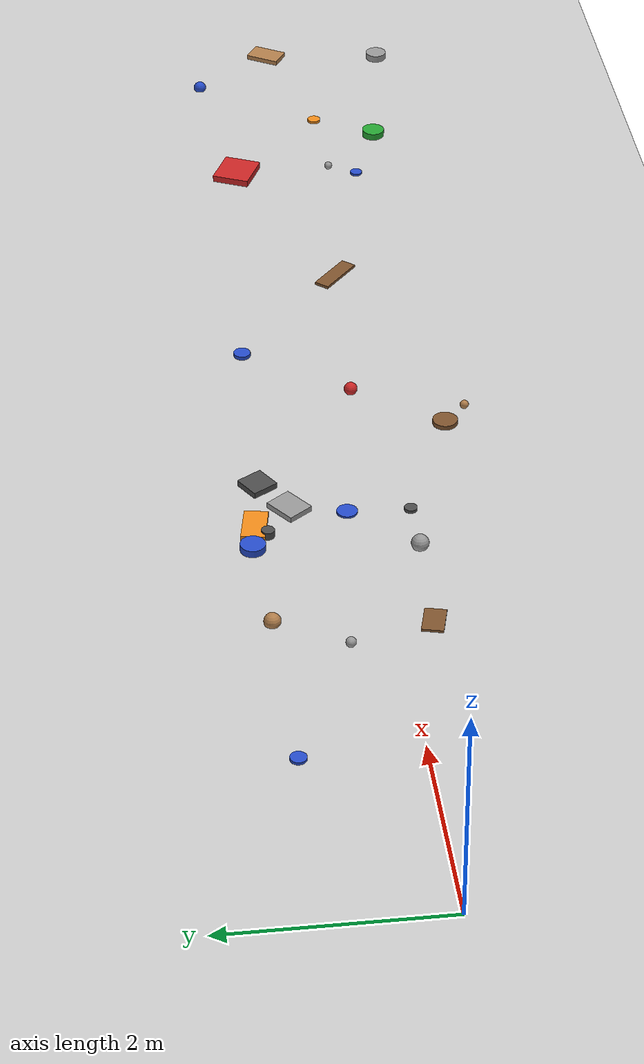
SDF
<?xml version="1.0" ?>
<!-- 由 omni_world.py 自动生成: scene=random seed=5 -->
<sdf version="1.5">
  <world name="random">
    <physics type="ode">
      <type>world</type>
      <max_step_size>0.001</max_step_size>
      <real_time_update_rate>1000</real_time_update_rate>
      <iters>500</iters>
    </physics>
    <include><uri>model://sun</uri></include>
    <include><uri>model://ground_plane</uri></include>
    <model name="r_sph_0">
      <static>true</static>
      <pose>4.693 -0.340 0.034 0 0 0</pose>
      <link name="link">
        <collision name="collision">
          <geometry><sphere><radius>0.082</radius></sphere></geometry>
          <surface><friction><ode><mu>1.0</mu><mu2>1.0</mu2></ode></friction></surface>
        </collision>
        <visual name="visual">
          <geometry><sphere><radius>0.082</radius></sphere></geometry>
          <material><script><uri>file://media/materials/scripts/gazebo.material</uri>
            <name>Gazebo/Grey</name></script></material>
        </visual>
      </link>
    </model>
    <model name="r_cyl_1">
      <static>true</static>
      <pose>11.199 -0.602 0.012 0 0 0</pose>
      <link name="link">
        <collision name="collision">
          <geometry><cylinder><radius>0.061</radius><length>0.024</length></cylinder></geometry>
          <surface><friction><ode><mu>1.0</mu><mu2>1.0</mu2></ode></friction></surface>
        </collision>
        <visual name="visual">
          <geometry><cylinder><radius>0.061</radius><length>0.024</length></cylinder></geometry>
          <material><script><uri>file://media/materials/scripts/gazebo.material</uri>
            <name>Gazebo/Blue</name></script></material>
        </visual>
      </link>
    </model>
    <model name="r_cyl_2">
      <static>true</static>
      <pose>12.356 -0.286 0.014 0 0 0</pose>
      <link name="link">
        <collision name="collision">
          <geometry><cylinder><radius>0.067</radius><length>0.027</length></cylinder></geometry>
          <surface><friction><ode><mu>1.0</mu><mu2>1.0</mu2></ode></friction></surface>
        </collision>
        <visual name="visual">
          <geometry><cylinder><radius>0.067</radius><length>0.027</length></cylinder></geometry>
          <material><script><uri>file://media/materials/scripts/gazebo.material</uri>
            <name>Gazebo/Orange</name></script></material>
        </visual>
      </link>
    </model>
    <model name="r_cyl_3">
      <static>true</static>
      <pose>4.994 0.999 0.037 0 0 0</pose>
      <link name="link">
        <collision name="collision">
          <geometry><cylinder><radius>0.061</radius><length>0.074</length></cylinder></geometry>
          <surface><friction><ode><mu>1.0</mu><mu2>1.0</mu2></ode></friction></surface>
        </collision>
        <visual name="visual">
          <geometry><cylinder><radius>0.061</radius><length>0.074</length></cylinder></geometry>
          <material><script><uri>file://media/materials/scripts/gazebo.material</uri>
            <name>Gazebo/DarkGrey</name></script></material>
        </visual>
      </link>
    </model>
    <model name="r_box_4">
      <static>true</static>
      <pose>9.224 -0.132 0.015 0.0000 0.0000 2.4303</pose>
      <link name="link">
        <collision name="collision">
          <geometry><box><size>0.490 0.152 0.029</size></box></geometry>
          <surface><friction><ode><mu>1.0</mu><mu2>1.0</mu2></ode></friction></surface>
        </collision>
        <visual name="visual">
          <geometry><box><size>0.490 0.152 0.029</size></box></geometry>
          <material><script><uri>file://media/materials/scripts/gazebo.material</uri>
            <name>Gazebo/Brown</name></script></material>
        </visual>
      </link>
    </model>
    <model name="r_box_5">
      <static>true</static>
      <pose>5.116 1.108 0.029 0.0000 0.0000 2.9562</pose>
      <link name="link">
        <collision name="collision">
          <geometry><box><size>0.387 0.222 0.058</size></box></geometry>
          <surface><friction><ode><mu>1.0</mu><mu2>1.0</mu2></ode></friction></surface>
        </collision>
        <visual name="visual">
          <geometry><box><size>0.387 0.222 0.058</size></box></geometry>
          <material><script><uri>file://media/materials/scripts/gazebo.material</uri>
            <name>Gazebo/Orange</name></script></material>
        </visual>
      </link>
    </model>
    <model name="r_cyl_6">
      <static>true</static>
      <pose>5.235 -0.333 0.016 0 0 0</pose>
      <link name="link">
        <collision name="collision">
          <geometry><cylinder><radius>0.060</radius><length>0.032</length></cylinder></geometry>
          <surface><friction><ode><mu>1.0</mu><mu2>1.0</mu2></ode></friction></surface>
        </collision>
        <visual name="visual">
          <geometry><cylinder><radius>0.060</radius><length>0.032</length></cylinder></geometry>
          <material><script><uri>file://media/materials/scripts/gazebo.material</uri>
            <name>Gazebo/DarkGrey</name></script></material>
        </visual>
      </link>
    </model>
    <model name="r_cyl_7">
      <static>true</static>
      <pose>5.267 0.247 0.010 0 0 0</pose>
      <link name="link">
        <collision name="collision">
          <geometry><cylinder><radius>0.097</radius><length>0.020</length></cylinder></geometry>
          <surface><friction><ode><mu>1.0</mu><mu2>1.0</mu2></ode></friction></surface>
        </collision>
        <visual name="visual">
          <geometry><cylinder><radius>0.097</radius><length>0.020</length></cylinder></geometry>
          <material><script><uri>file://media/materials/scripts/gazebo.material</uri>
            <name>Gazebo/Blue</name></script></material>
        </visual>
      </link>
    </model>
    <model name="r_box_8">
      <static>true</static>
      <pose>5.374 0.764 0.027 0.0000 0.0000 2.2138</pose>
      <link name="link">
        <collision name="collision">
          <geometry><box><size>0.261 0.318 0.054</size></box></geometry>
          <surface><friction><ode><mu>1.0</mu><mu2>1.0</mu2></ode></friction></surface>
        </collision>
        <visual name="visual">
          <geometry><box><size>0.261 0.318 0.054</size></box></geometry>
          <material><script><uri>file://media/materials/scripts/gazebo.material</uri>
            <name>Gazebo/Grey</name></script></material>
        </visual>
      </link>
    </model>
    <model name="r_cyl_9">
      <static>true</static>
      <pose>13.689 -1.145 0.036 0 0 0</pose>
      <link name="link">
        <collision name="collision">
          <geometry><cylinder><radius>0.109</radius><length>0.072</length></cylinder></geometry>
          <surface><friction><ode><mu>1.0</mu><mu2>1.0</mu2></ode></friction></surface>
        </collision>
        <visual name="visual">
          <geometry><cylinder><radius>0.109</radius><length>0.072</length></cylinder></geometry>
          <material><script><uri>file://media/materials/scripts/gazebo.material</uri>
            <name>Gazebo/Grey</name></script></material>
        </visual>
      </link>
    </model>
    <model name="r_sph_10">
      <static>true</static>
      <pose>11.347 -0.321 0.030 0 0 0</pose>
      <link name="link">
        <collision name="collision">
          <geometry><sphere><radius>0.040</radius></sphere></geometry>
          <surface><friction><ode><mu>1.0</mu><mu2>1.0</mu2></ode></friction></surface>
        </collision>
        <visual name="visual">
          <geometry><sphere><radius>0.040</radius></sphere></geometry>
          <material><script><uri>file://media/materials/scripts/gazebo.material</uri>
            <name>Gazebo/Grey</name></script></material>
        </visual>
      </link>
    </model>
    <model name="r_sph_11">
      <static>true</static>
      <pose>3.761 1.092 0.017 0 0 0</pose>
      <link name="link">
        <collision name="collision">
          <geometry><sphere><radius>0.078</radius></sphere></geometry>
          <surface><friction><ode><mu>1.0</mu><mu2>1.0</mu2></ode></friction></surface>
        </collision>
        <visual name="visual">
          <geometry><sphere><radius>0.078</radius></sphere></geometry>
          <material><script><uri>file://media/materials/scripts/gazebo.material</uri>
            <name>Gazebo/Wood</name></script></material>
        </visual>
      </link>
    </model>
    <model name="r_cyl_12">
      <static>true</static>
      <pose>7.906 0.943 0.019 0 0 0</pose>
      <link name="link">
        <collision name="collision">
          <geometry><cylinder><radius>0.082</radius><length>0.038</length></cylinder></geometry>
          <surface><friction><ode><mu>1.0</mu><mu2>1.0</mu2></ode></friction></surface>
        </collision>
        <visual name="visual">
          <geometry><cylinder><radius>0.082</radius><length>0.038</length></cylinder></geometry>
          <material><script><uri>file://media/materials/scripts/gazebo.material</uri>
            <name>Gazebo/Blue</name></script></material>
        </visual>
      </link>
    </model>
    <model name="r_cyl_13">
      <static>true</static>
      <pose>1.958 1.070 0.013 0 0 0</pose>
      <link name="link">
        <collision name="collision">
          <geometry><cylinder><radius>0.074</radius><length>0.026</length></cylinder></geometry>
          <surface><friction><ode><mu>1.0</mu><mu2>1.0</mu2></ode></friction></surface>
        </collision>
        <visual name="visual">
          <geometry><cylinder><radius>0.074</radius><length>0.026</length></cylinder></geometry>
          <material><script><uri>file://media/materials/scripts/gazebo.material</uri>
            <name>Gazebo/Blue</name></script></material>
        </visual>
      </link>
    </model>
    <model name="r_box_14">
      <static>true</static>
      <pose>5.749 1.018 0.029 0.0000 0.0000 0.5576</pose>
      <link name="link">
        <collision name="collision">
          <geometry><box><size>0.259 0.261 0.058</size></box></geometry>
          <surface><friction><ode><mu>1.0</mu><mu2>1.0</mu2></ode></friction></surface>
        </collision>
        <visual name="visual">
          <geometry><box><size>0.259 0.261 0.058</size></box></geometry>
          <material><script><uri>file://media/materials/scripts/gazebo.material</uri>
            <name>Gazebo/DarkGrey</name></script></material>
        </visual>
      </link>
    </model>
    <model name="r_sph_15">
      <static>true</static>
      <pose>3.361 0.454 0.045 0 0 0</pose>
      <link name="link">
        <collision name="collision">
          <geometry><sphere><radius>0.048</radius></sphere></geometry>
          <surface><friction><ode><mu>1.0</mu><mu2>1.0</mu2></ode></friction></surface>
        </collision>
        <visual name="visual">
          <geometry><sphere><radius>0.048</radius></sphere></geometry>
          <material><script><uri>file://media/materials/scripts/gazebo.material</uri>
            <name>Gazebo/Grey</name></script></material>
        </visual>
      </link>
    </model>
    <model name="r_box_16">
      <static>true</static>
      <pose>13.834 0.080 0.024 0.0000 0.0000 2.5959</pose>
      <link name="link">
        <collision name="collision">
          <geometry><box><size>0.233 0.358 0.048</size></box></geometry>
          <surface><friction><ode><mu>1.0</mu><mu2>1.0</mu2></ode></friction></surface>
        </collision>
        <visual name="visual">
          <geometry><box><size>0.233 0.358 0.048</size></box></geometry>
          <material><script><uri>file://media/materials/scripts/gazebo.material</uri>
            <name>Gazebo/Wood</name></script></material>
        </visual>
      </link>
    </model>
    <model name="r_sph_17">
      <static>true</static>
      <pose>6.772 -1.066 0.042 0 0 0</pose>
      <link name="link">
        <collision name="collision">
          <geometry><sphere><radius>0.042</radius></sphere></geometry>
          <surface><friction><ode><mu>1.0</mu><mu2>1.0</mu2></ode></friction></surface>
        </collision>
        <visual name="visual">
          <geometry><sphere><radius>0.042</radius></sphere></geometry>
          <material><script><uri>file://media/materials/scripts/gazebo.material</uri>
            <name>Gazebo/Wood</name></script></material>
        </visual>
      </link>
    </model>
    <model name="r_cyl_18">
      <static>true</static>
      <pose>11.980 -0.887 0.036 0 0 0</pose>
      <link name="link">
        <collision name="collision">
          <geometry><cylinder><radius>0.116</radius><length>0.071</length></cylinder></geometry>
          <surface><friction><ode><mu>1.0</mu><mu2>1.0</mu2></ode></friction></surface>
        </collision>
        <visual name="visual">
          <geometry><cylinder><radius>0.116</radius><length>0.071</length></cylinder></geometry>
          <material><script><uri>file://media/materials/scripts/gazebo.material</uri>
            <name>Gazebo/Green</name></script></material>
        </visual>
      </link>
    </model>
    <model name="r_box_19">
      <static>true</static>
      <pose>3.610 -0.305 0.012 0.0000 0.0000 2.8966</pose>
      <link name="link">
        <collision name="collision">
          <geometry><box><size>0.297 0.199 0.024</size></box></geometry>
          <surface><friction><ode><mu>1.0</mu><mu2>1.0</mu2></ode></friction></surface>
        </collision>
        <visual name="visual">
          <geometry><box><size>0.297 0.199 0.024</size></box></geometry>
          <material><script><uri>file://media/materials/scripts/gazebo.material</uri>
            <name>Gazebo/Brown</name></script></material>
        </visual>
      </link>
    </model>
    <model name="r_sph_20">
      <static>true</static>
      <pose>7.169 -0.028 0.036 0 0 0</pose>
      <link name="link">
        <collision name="collision">
          <geometry><sphere><radius>0.064</radius></sphere></geometry>
          <surface><friction><ode><mu>1.0</mu><mu2>1.0</mu2></ode></friction></surface>
        </collision>
        <visual name="visual">
          <geometry><sphere><radius>0.064</radius></sphere></geometry>
          <material><script><uri>file://media/materials/scripts/gazebo.material</uri>
            <name>Gazebo/Red</name></script></material>
        </visual>
      </link>
    </model>
    <model name="r_cyl_21">
      <static>true</static>
      <pose>6.547 -0.848 0.023 0 0 0</pose>
      <link name="link">
        <collision name="collision">
          <geometry><cylinder><radius>0.119</radius><length>0.046</length></cylinder></geometry>
          <surface><friction><ode><mu>1.0</mu><mu2>1.0</mu2></ode></friction></surface>
        </collision>
        <visual name="visual">
          <geometry><cylinder><radius>0.119</radius><length>0.046</length></cylinder></geometry>
          <material><script><uri>file://media/materials/scripts/gazebo.material</uri>
            <name>Gazebo/Brown</name></script></material>
        </visual>
      </link>
    </model>
    <model name="r_sph_22">
      <static>true</static>
      <pose>13.214 0.883 0.016 0 0 0</pose>
      <link name="link">
        <collision name="collision">
          <geometry><sphere><radius>0.065</radius></sphere></geometry>
          <surface><friction><ode><mu>1.0</mu><mu2>1.0</mu2></ode></friction></surface>
        </collision>
        <visual name="visual">
          <geometry><sphere><radius>0.065</radius></sphere></geometry>
          <material><script><uri>file://media/materials/scripts/gazebo.material</uri>
            <name>Gazebo/Blue</name></script></material>
        </visual>
      </link>
    </model>
    <model name="r_box_23">
      <static>true</static>
      <pose>11.325 0.660 0.034 0.0000 0.0000 1.1418</pose>
      <link name="link">
        <collision name="collision">
          <geometry><box><size>0.382 0.416 0.069</size></box></geometry>
          <surface><friction><ode><mu>1.0</mu><mu2>1.0</mu2></ode></friction></surface>
        </collision>
        <visual name="visual">
          <geometry><box><size>0.382 0.416 0.069</size></box></geometry>
          <material><script><uri>file://media/materials/scripts/gazebo.material</uri>
            <name>Gazebo/Red</name></script></material>
        </visual>
      </link>
    </model>
    <model name="r_cyl_24">
      <static>true</static>
      <pose>4.811 1.154 0.035 0 0 0</pose>
      <link name="link">
        <collision name="collision">
          <geometry><cylinder><radius>0.117</radius><length>0.070</length></cylinder></geometry>
          <surface><friction><ode><mu>1.0</mu><mu2>1.0</mu2></ode></friction></surface>
        </collision>
        <visual name="visual">
          <geometry><cylinder><radius>0.117</radius><length>0.070</length></cylinder></geometry>
          <material><script><uri>file://media/materials/scripts/gazebo.material</uri>
            <name>Gazebo/Blue</name></script></material>
        </visual>
      </link>
    </model>

  </world>
</sdf>
